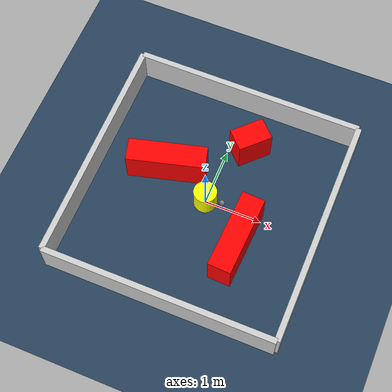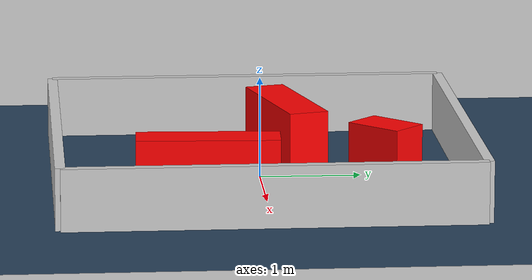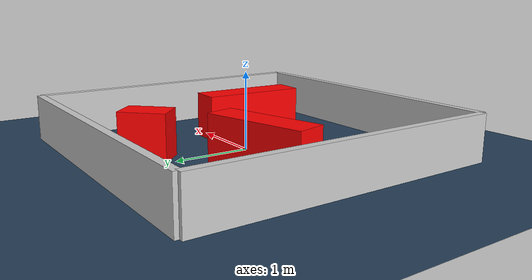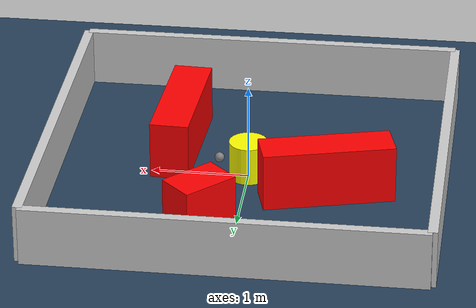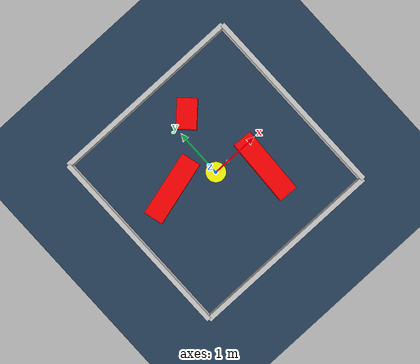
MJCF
<?xml version="1.0" ?>
<mujoco model="generated_environment">
  <option timestep="0.01" integrator="RK4" cone="elliptic"/>
  <default>
    <geom density="1"/>
  </default>
  <asset>
    <texture builtin="gradient" height="3072" rgb1="0.3 0.5 0.7" rgb2="0 0 0" type="skybox" width="512"/>
    <texture builtin="checker" height="300" mark="edge" markrgb="0.8 0.8 0.8" name="groundplane" rgb1="0.2 0.3 0.4" rgb2="0.1 0.2 0.3" type="2d" width="300"/>
    <material name="groundplane" reflectance="0.2" texrepeat="5 5" texture="groundplane" texuniform="true"/>
    <material name="robot" rgba="0.0 1.0 0.0 1"/>
  </asset>
  <worldbody>
    <light dir="0 0 -1" directional="true" pos="0 0 1.5"/>
    <geom condim="4" friction="1.0 0.005 0.001" material="groundplane" name="floor" size="0 0 0.05" type="plane"/>
    <body name="walls">
      <geom name="wall_1" condim="4" pos="-2.0 0.0 0.3" rgba="0.800000011920929 0.800000011920929 0.800000011920929 1.0" size="0.05 2.0 0.3" type="box"/>
      <geom name="wall_2" condim="4" pos="2.0 0.0 0.3" rgba="0.800000011920929 0.800000011920929 0.800000011920929 1.0" size="0.05 2.0 0.3" type="box"/>
      <geom name="wall_3" condim="4" pos="0.0 -2.0 0.3" rgba="0.800000011920929 0.800000011920929 0.800000011920929 1.0" size="2.0 0.05 0.3" type="box"/>
      <geom name="wall_4" condim="4" pos="0.0 2.0 0.3" rgba="0.800000011920929 0.800000011920929 0.800000011920929 1.0" size="2.0 0.05 0.3" type="box"/>
    </body>
    <body name="robot">
      <joint name="joint_x" type="slide" pos="0 0 0" axis="1 0 0"/>
      <joint name="joint_y" type="slide" pos="0 0 0" axis="0 1 0"/>
      <geom name="robot" type="sphere" pos="0.3 0.0 0.2" size="0.05" mass="5." friction="1.0 0.005 0.0001" condim="4" rgba="0.5 0.5 0.5 1.0"/>
      <site name="sensor_ball"/>
    </body>
    <body name="obstacle_movable_1">
      <geom name="obstacle_movable_1" condim="4" pos="0.0 0.0 0.2" euler="0 0 0.0" friction="1.0 0.005 0.001" rgba="1.0 1.0 0.0 1.0" size="0.2 0.2 0.0" type="cylinder" mass="0.1"/>
      <joint type="free"/>
    </body>
    <body name="obstacle_2_static">
      <geom name="obstacle_2_static" condim="4" pos="-0.8336530487387318 0.3312412665854023 0.3" euler="0 0 14.86824625136526" friction="1.0 0.005 0.001" rgba="1 0 0 1" size="0.6753895187819476 0.2 0.3" type="box"/>
    </body>
    <body name="obstacle_3_static">
      <geom name="obstacle_3_static" condim="4" pos="0.7728699672992219 -0.5540356209071844 0.3" euler="0 0 267.52194652023115" friction="1.0 0.005 0.001" rgba="1 0 0 1" size="0.6958646667989947 0.2 0.3" type="box"/>
    </body>
    <body name="obstacle_4_static">
      <geom name="obstacle_4_static" condim="4" pos="0.3434908614520098 1.2057326830207609 0.3" euler="0 0 225.36418075645423" friction="1.0 0.005 0.001" rgba="1 0 0 1" size="0.30121760138837506 0.2 0.3" type="box"/>
    </body>
  </worldbody>
  <actuator>
    <motor name="actuator_x" joint="joint_x" gear="1" ctrlrange="-1 1"/>
    <motor name="actuator_y" joint="joint_y" gear="1" ctrlrange="-1 1"/>
  </actuator>
</mujoco>
